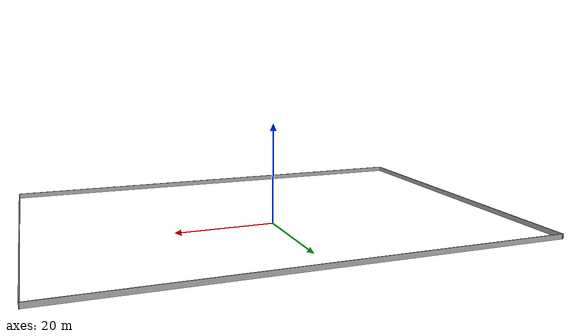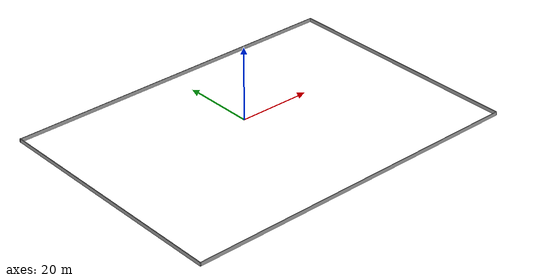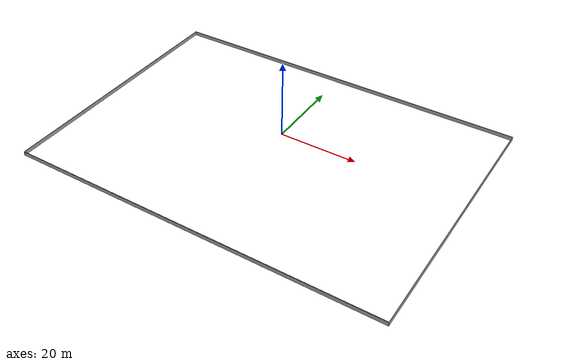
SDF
<?xml version='1.0'?>
<sdf version='1.6'>
  <model name='walls_evry'>
    <pose frame=''>0.580204 -5.79028 0 0 -0 0</pose>
    <link name='Wall_0'>
      <collision name='Wall_0_Collision'>
        <geometry>
          <box>
            <size>95 0.15 1</size>
          </box>
        </geometry>
        <pose frame=''>0 0 0.5 0 -0 0</pose>
      </collision>
      <visual name='Wall_0_Visual'>
        <pose frame=''>0 0 0.5 0 -0 0</pose>
        <geometry>
          <box>
            <size>95 0.15 1</size>
          </box>
        </geometry>
        <material>
          <script>
            <uri>file://media/materials/scripts/gazebo.material</uri>
            <name>Gazebo/Grey</name>
          </script>
          <ambient>1 1 1 1</ambient>
        </material>
        <meta>
          <layer>0</layer>
        </meta>
      </visual>
      <pose frame=''>-0.000204 33.4423 0 0 -0 0</pose>
    </link>
    <link name='Wall_1'>
      <collision name='Wall_1_Collision'>
        <geometry>
          <box>
            <size>67.1433 0.15 1</size>
          </box>
        </geometry>
        <pose frame=''>0 0 0.5 0 -0 0</pose>
      </collision>
      <visual name='Wall_1_Visual'>
        <pose frame=''>0 0 0.5 0 -0 0</pose>
        <geometry>
          <box>
            <size>67.1433 0.15 1</size>
          </box>
        </geometry>
        <material>
          <script>
            <uri>file://media/materials/scripts/gazebo.material</uri>
            <name>Gazebo/Grey</name>
          </script>
          <ambient>1 1 1 1</ambient>
        </material>
        <meta>
          <layer>0</layer>
        </meta>
      </visual>
      <pose frame=''>47.2433 -0.053719 0 0 -0 -1.57621</pose>
    </link>
    <link name='Wall_2'>
      <collision name='Wall_2_Collision'>
        <geometry>
          <box>
            <size>94.5 0.15 1</size>
          </box>
        </geometry>
        <pose frame=''>0 0 0.5 0 -0 0</pose>
      </collision>
      <visual name='Wall_2_Visual'>
        <pose frame=''>0 0 0.5 0 -0 0</pose>
        <geometry>
          <box>
            <size>94.5 0.15 1</size>
          </box>
        </geometry>
        <material>
          <script>
            <uri>file://media/materials/scripts/gazebo.material</uri>
            <name>Gazebo/Grey</name>
          </script>
          <ambient>1 1 1 1</ambient>
        </material>
        <meta>
          <layer>0</layer>
        </meta>
      </visual>
      <pose frame=''>-0.113204 -33.5497 0 0 -0 3.14159</pose>
    </link>
    <link name='Wall_3'>
      <collision name='Wall_3_Collision'>
        <geometry>
          <box>
            <size>67.25 0.15 1</size>
          </box>
        </geometry>
        <pose frame=''>0 0 0.5 0 -0 0</pose>
      </collision>
      <visual name='Wall_3_Visual'>
        <pose frame=''>0 0 0.5 0 -0 0</pose>
        <geometry>
          <box>
            <size>67.25 0.15 1</size>
          </box>
        </geometry>
        <material>
          <script>
            <uri>file://media/materials/scripts/gazebo.material</uri>
            <name>Gazebo/Grey</name>
          </script>
          <ambient>1 1 1 1</ambient>
        </material>
        <meta>
          <layer>0</layer>
        </meta>
      </visual>
      <pose frame=''>-47.2882 0.000281 0 0 -0 1.5708</pose>
    </link>
    <static>1</static>
  </model>
</sdf>
